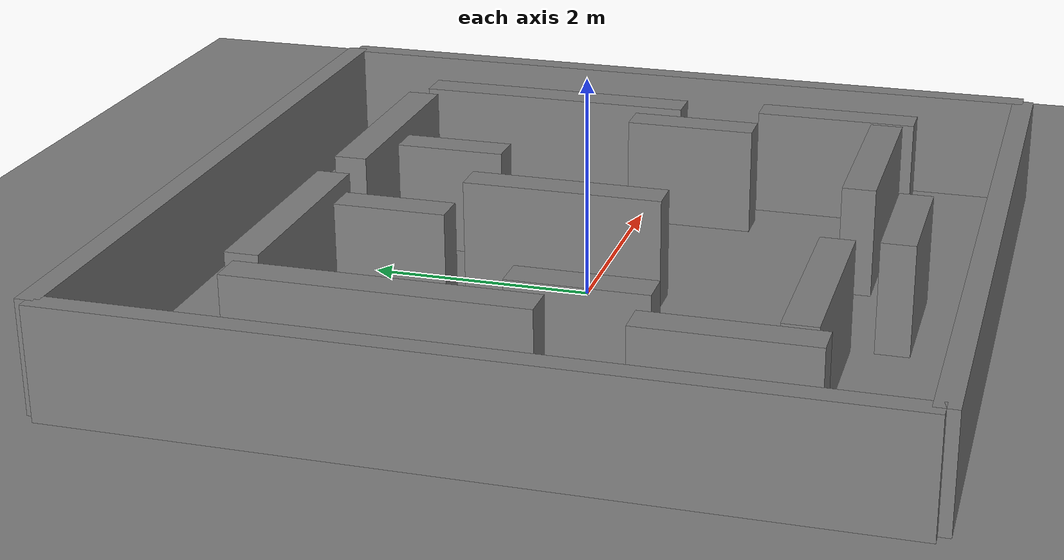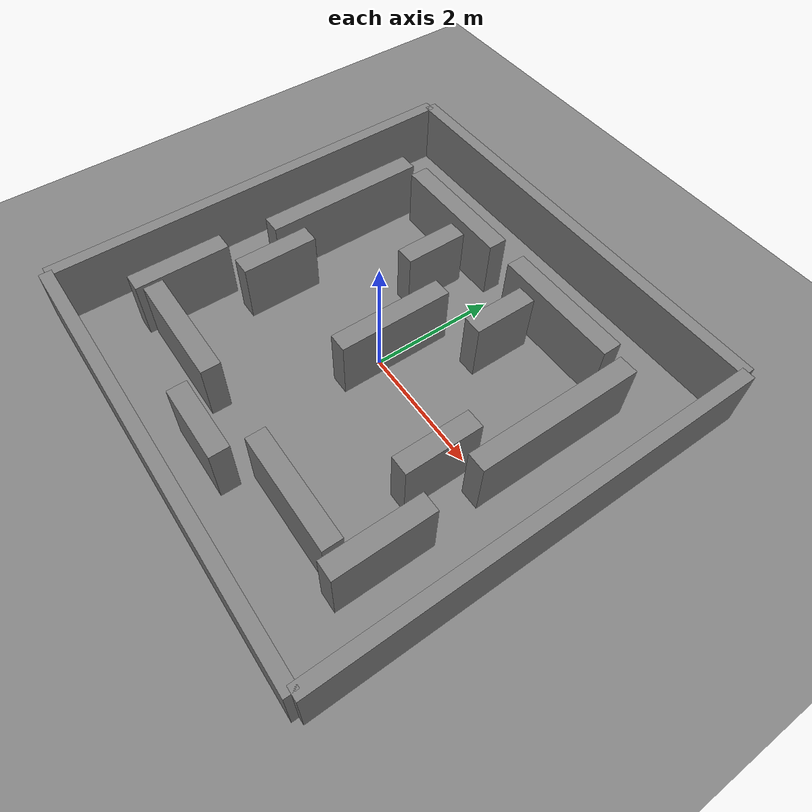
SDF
<?xml version="1.0" ?>
<sdf version="1.8">
  <world name="rooms">
    <physics name="1ms" type="bullet">
      <max_step_size>0.001</max_step_size>
      <real_time_factor>1.0</real_time_factor>
    </physics>

    <plugin filename="gz-sim-physics-system" name="gz::sim::systems::Physics" />
    <plugin filename="gz-sim-user-commands-system" name="gz::sim::systems::UserCommands" />
    <plugin filename="gz-sim-scene-broadcaster-system" name="gz::sim::systems::SceneBroadcaster" />
    <plugin filename="gz-sim-sensors-system" name="gz::sim::systems::Sensors" />

    <scene>
      <ambient>1.0 1.0 1.0 1</ambient>
      <background>0.8 0.8 0.8 1</background>
      <shadows>true</shadows>
    </scene>

    <light type="directional" name="sun">
      <cast_shadows>true</cast_shadows>
      <pose>0 0 10 0 0 0</pose>
      <diffuse>1.0 1.0 1.0 1</diffuse>
      <specular>0.5 0.5 0.5 1</specular>
      <direction>-0.5 0.5 -0.9</direction>
    </light>

    <model name="ground_plane">
      <static>true</static>
      <link name="link">
        <collision name="collision">
          <geometry><plane><normal>0 0 1</normal></plane></geometry>
        </collision>
        <visual name="visual">
          <geometry><plane><normal>0 0 1</normal><size>10 10</size></plane></geometry>
          <material><ambient>0.5 0.5 0.5 1</ambient><diffuse>0.5 0.5 0.5 1</diffuse></material>
        </visual>
      </link>
    </model>

    <!-- OUTER BOUNDARY WALLS -->
    <model name="maze_boundary">
      <static>true</static>

      <link name="wall_north">
        <pose>0 3.5 0.5 0 0 0</pose>
        <collision name="c"><geometry><box><size>7 0.2 1</size></box></geometry></collision>
        <visual name="v"><geometry><box><size>7 0.2 1</size></box></geometry><material><ambient>0.5 0.5 0.5 1</ambient><diffuse>0.5 0.5 0.5 1</diffuse></material></visual>
      </link>

      <link name="wall_south">
        <pose>0 -3.5 0.5 0 0 0</pose>
        <collision name="c"><geometry><box><size>7 0.2 1</size></box></geometry></collision>
        <visual name="v"><geometry><box><size>7 0.2 1</size></box></geometry><material><ambient>0.5 0.5 0.5 1</ambient><diffuse>0.5 0.5 0.5 1</diffuse></material></visual>
      </link>

      <link name="wall_east">
        <pose>3.5 0 0.5 0 0 1.5708</pose>
        <collision name="c"><geometry><box><size>7 0.2 1</size></box></geometry></collision>
        <visual name="v"><geometry><box><size>7 0.2 1</size></box></geometry><material><ambient>0.5 0.5 0.5 1</ambient><diffuse>0.5 0.5 0.5 1</diffuse></material></visual>
      </link>

      <link name="wall_west">
        <pose>-3.5 0 0.5 0 0 1.5708</pose>
        <collision name="c"><geometry><box><size>7 0.2 1</size></box></geometry></collision>
        <visual name="v"><geometry><box><size>7 0.2 1</size></box></geometry><material><ambient>0.5 0.5 0.5 1</ambient><diffuse>0.5 0.5 0.5 1</diffuse></material></visual>
      </link>
    </model>

    <!-- INTERIOR MAZE WALLS - Creating closed loop path -->
    <model name="maze_walls">
      <static>true</static>

      <!-- Top Right Area -->
      <link name="wall_1">
        <pose>1.2 2.3 0.5 0 0 0</pose>
        <collision name="c"><geometry><box><size>2.0 0.3 1</size></box></geometry></collision>
        <visual name="v"><geometry><box><size>2.0 0.3 1</size></box></geometry><material><ambient>0.5 0.5 0.5 1</ambient><diffuse>0.5 0.5 0.5 1</diffuse></material></visual>
      </link>

      <link name="wall_2">
        <pose>2.5 1.0 0.5 0 0 1.5708</pose>
        <collision name="c"><geometry><box><size>2.6 0.3 1</size></box></geometry></collision>
        <visual name="v"><geometry><box><size>2.6 0.3 1</size></box></geometry><material><ambient>0.5 0.5 0.5 1</ambient><diffuse>0.5 0.5 0.5 1</diffuse></material></visual>
      </link>

      <!-- Top Left Area -->
      <link name="wall_3">
        <pose>-1.2 2.3 0.5 0 0 0</pose>
        <collision name="c"><geometry><box><size>2.0 0.3 1</size></box></geometry></collision>
        <visual name="v"><geometry><box><size>2.0 0.3 1</size></box></geometry><material><ambient>0.5 0.5 0.5 1</ambient><diffuse>0.5 0.5 0.5 1</diffuse></material></visual>
      </link>

      <link name="wall_4">
        <pose>-2.5 1.0 0.5 0 0 1.5708</pose>
        <collision name="c"><geometry><box><size>2.6 0.3 1</size></box></geometry></collision>
        <visual name="v"><geometry><box><size>2.6 0.3 1</size></box></geometry><material><ambient>0.5 0.5 0.5 1</ambient><diffuse>0.5 0.5 0.5 1</diffuse></material></visual>
      </link>

      <!-- Center Vertical Wall -->
      <link name="wall_5">
        <pose>0 0.2 0.5 0 0 1.5708</pose>
        <collision name="c"><geometry><box><size>1.8 0.3 1</size></box></geometry></collision>
        <visual name="v"><geometry><box><size>1.8 0.3 1</size></box></geometry><material><ambient>0.5 0.5 0.5 1</ambient><diffuse>0.5 0.5 0.5 1</diffuse></material></visual>
      </link>

      <!-- Right Side Vertical -->
      <link name="wall_6">
        <pose>2.0 -0.5 0.5 0 0 1.5708</pose>
        <collision name="c"><geometry><box><size>1.2 0.3 1</size></box></geometry></collision>
        <visual name="v"><geometry><box><size>1.2 0.3 1</size></box></geometry><material><ambient>0.5 0.5 0.5 1</ambient><diffuse>0.5 0.5 0.5 1</diffuse></material></visual>
      </link>

      <!-- Left Side Vertical -->
      <link name="wall_7">
        <pose>-2.0 -0.5 0.5 0 0 1.5708</pose>
        <collision name="c"><geometry><box><size>1.2 0.3 1</size></box></geometry></collision>
        <visual name="v"><geometry><box><size>1.2 0.3 1</size></box></geometry><material><ambient>0.5 0.5 0.5 1</ambient><diffuse>0.5 0.5 0.5 1</diffuse></material></visual>
      </link>

      <!-- Bottom Left Area -->
      <link name="wall_8">
        <pose>-1.5 -2.3 0.5 0 0 0</pose>
        <collision name="c"><geometry><box><size>1.8 0.3 1</size></box></geometry></collision>
        <visual name="v"><geometry><box><size>1.8 0.3 1</size></box></geometry><material><ambient>0.5 0.5 0.5 1</ambient><diffuse>0.5 0.5 0.5 1</diffuse></material></visual>
      </link>

      <link name="wall_9">
        <pose>-2.6 -1.8 0.5 0 0 1.5708</pose>
        <collision name="c"><geometry><box><size>1.5 0.3 1</size></box></geometry></collision>
        <visual name="v"><geometry><box><size>1.5 0.3 1</size></box></geometry><material><ambient>0.5 0.5 0.5 1</ambient><diffuse>0.5 0.5 0.5 1</diffuse></material></visual>
      </link>

      <!-- Bottom Right Area -->
      <link name="wall_10">
        <pose>1.5 -2.3 0.5 0 0 0</pose>
        <collision name="c"><geometry><box><size>1.8 0.3 1</size></box></geometry></collision>
        <visual name="v"><geometry><box><size>1.8 0.3 1</size></box></geometry><material><ambient>0.5 0.5 0.5 1</ambient><diffuse>0.5 0.5 0.5 1</diffuse></material></visual>
      </link>

      <link name="wall_11">
        <pose>2.6 -1.8 0.5 0 0 1.5708</pose>
        <collision name="c"><geometry><box><size>1.5 0.3 1</size></box></geometry></collision>
        <visual name="v"><geometry><box><size>1.5 0.3 1</size></box></geometry><material><ambient>0.5 0.5 0.5 1</ambient><diffuse>0.5 0.5 0.5 1</diffuse></material></visual>
      </link>

      <!-- Bottom Center Connection -->
      <link name="wall_12">
        <pose>0 -2.8 0.5 0 0 0</pose>
        <collision name="c"><geometry><box><size>1.2 0.3 1</size></box></geometry></collision>
        <visual name="v"><geometry><box><size>1.2 0.3 1</size></box></geometry><material><ambient>0.5 0.5 0.5 1</ambient><diffuse>0.5 0.5 0.5 1</diffuse></material></visual>
      </link>

      <!-- Passages and connectors -->
      <link name="wall_13">
        <pose>0.8 1.5 0.5 0 0 1.5708</pose>
        <collision name="c"><geometry><box><size>1.0 0.3 1</size></box></geometry></collision>
        <visual name="v"><geometry><box><size>1.0 0.3 1</size></box></geometry><material><ambient>0.5 0.5 0.5 1</ambient><diffuse>0.5 0.5 0.5 1</diffuse></material></visual>
      </link>

      <link name="wall_14">
        <pose>-0.8 1.5 0.5 0 0 1.5708</pose>
        <collision name="c"><geometry><box><size>1.0 0.3 1</size></box></geometry></collision>
        <visual name="v"><geometry><box><size>1.0 0.3 1</size></box></geometry><material><ambient>0.5 0.5 0.5 1</ambient><diffuse>0.5 0.5 0.5 1</diffuse></material></visual>
      </link>

    </model>

  </world>
</sdf>
